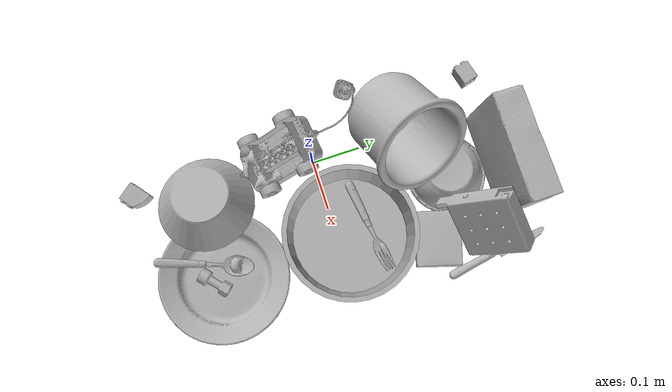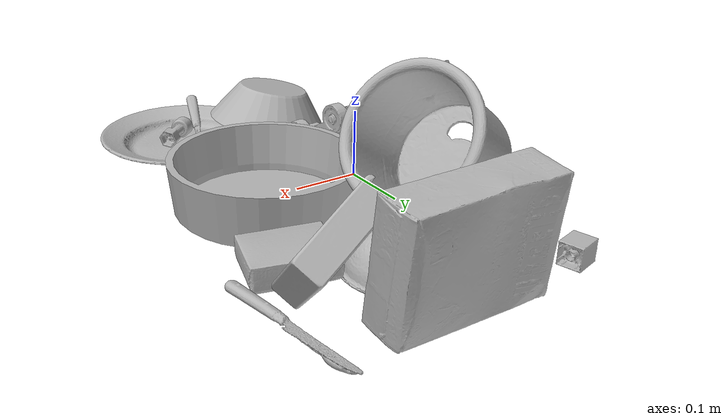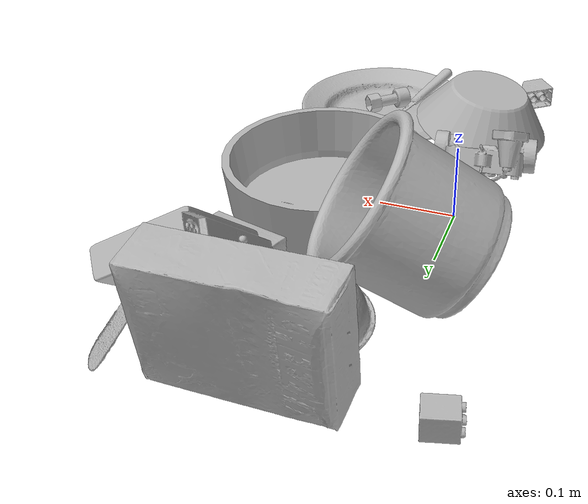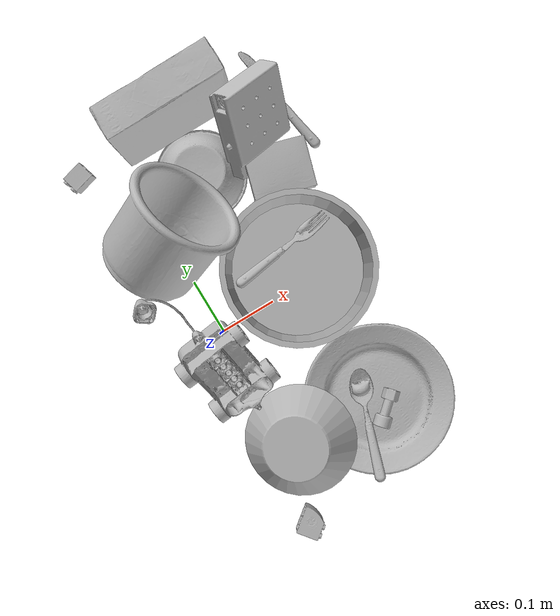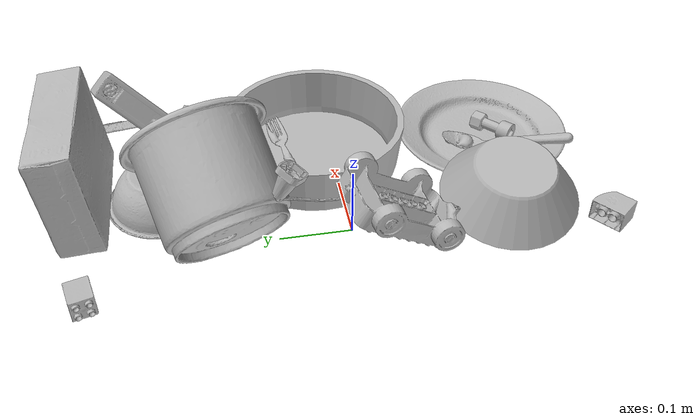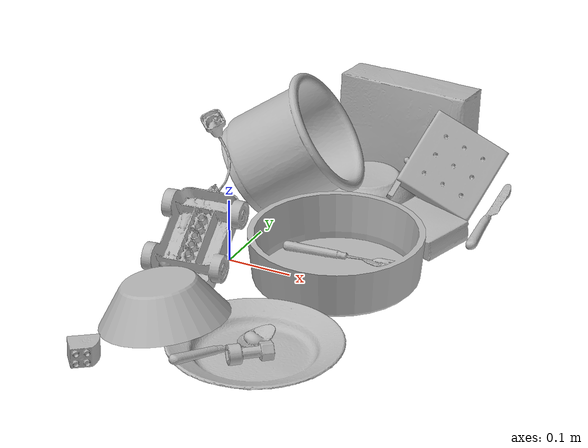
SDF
<sdf version="1.4">
  <world name="default">
    <light name="light1" type="point">
      <pose>0 0 1 0 0 0</pose>
      <diffuse>3 3 3 1</diffuse>
      <specular>3 3 3 1</specular>
    </light>
    <light name="light2" type="point">
      <pose>0 0.5 2 0 0 0</pose>
      <diffuse>1 1 1 1</diffuse>
      <specular>1 1 1 1</specular>
    </light>
    <light name="light3" type="point">
      <pose>0 0.5 2 0 0 0</pose>
      <diffuse>3 3 3 1</diffuse>
      <specular>3 3 3 1</specular>
    </light>
    <scene>
      <ambient>0.7 0.7 0.7</ambient>
    </scene>
    <model name="plate1">
      <link name="link_plate1">
        <collision name="default">
          <geometry>
            <mesh>
              <uri>model://plate/collision_meshes/collision.obj</uri>
              <scale>1.0 1.0 1.0</scale>
            </mesh>
          </geometry>
          <surface>
            <friction>
              <ode>
                <mu>0.5</mu>
                <mu2>0.5</mu2>
              </ode>
            </friction>
          <contact>
        <ode>
            <max_vel>0</max_vel>
            <min_depth>0.0001</min_depth>
            <kp>1e8</kp>
        </ode>
    </contact></surface>
        </collision>
        <visual name="default">
          <geometry>
            <mesh>
              <uri>model://plate/visual_meshes/visual.dae</uri>
              <scale>1.0 1.0 1.0</scale>
            </mesh>
          </geometry>
        </visual>
        <inertial>
          <mass>0.2518167495727539</mass>
          <pose>-0.000604460306931287 0.0002782583760563284 -0.001056198962032795 0.0022187362427659595 -0.003225514577586686 0.4526257716004426</pose>
          <inertia>
            <ixx>0.0011780038</ixx>
            <iyy>0.001166737</iyy>
            <izz>0.0023039998</izz>
            <ixy>0</ixy>
            <ixz>0</ixz>
            <iyz>0</iyz>
          </inertia>
        </inertial>
      </link>
      <pose>0.16916710138320923 -0.23856277763843536 0.013733038678765297 1.8202615425009327e-06 1.203909335968465e-06 -2.5627253043590903</pose>
    </model>
    <model name="plate2">
      <link name="link_plate2">
        <collision name="default">
          <geometry>
            <mesh>
              <uri>model://pan_tefal/collision_meshes/collision.obj</uri>
              <scale>1.0 1.0 1.0</scale>
            </mesh>
          </geometry>
          <surface>
            <friction>
              <ode>
                <mu>0.5</mu>
                <mu2>0.5</mu2>
              </ode>
            </friction>
          <contact>
        <ode>
            <max_vel>0</max_vel>
            <min_depth>0.0001</min_depth>
            <kp>1e8</kp>
        </ode>
    </contact></surface>
        </collision>
        <visual name="default">
          <geometry>
            <mesh>
              <uri>model://pan_tefal/visual_meshes/visual.dae</uri>
              <scale>1.0 1.0 1.0</scale>
            </mesh>
          </geometry>
        </visual>
        <inertial>
          <mass>1.062379002571106</mass>
          <pose>-0.00018001841090153903 3.2791107514640316e-05 -0.008514937944710255 0.0008190335190592257 -0.00033013878845789875 -0.3318630487039029</pose>
          <inertia>
            <ixx>0.0073335525</ixx>
            <iyy>0.007380832</iyy>
            <izz>0.013499655</izz>
            <ixy>0</ixy>
            <ixz>0</ixz>
            <iyz>0</iyz>
          </inertia>
        </inertial>
      </link>
      <pose>0.16593846678733826 0.024734513834118843 0.03802001103758812 0.00023647257592013975 0.0003055837478127161 0.787551136513481</pose>
    </model>
    <model name="bowl1">
      <link name="link_bowl1">
        <collision name="default">
          <geometry>
            <mesh>
              <uri>model://bowl/collision_meshes/collision.obj</uri>
              <scale>1.0 1.0 1.0</scale>
            </mesh>
          </geometry>
          <surface>
            <friction>
              <ode>
                <mu>0.5</mu>
                <mu2>0.5</mu2>
              </ode>
            </friction>
          <contact>
        <ode>
            <max_vel>0</max_vel>
            <min_depth>0.0001</min_depth>
            <kp>1e8</kp>
        </ode>
    </contact></surface>
        </collision>
        <visual name="default">
          <geometry>
            <mesh>
              <uri>model://bowl/visual_meshes/visual.dae</uri>
              <scale>1.0 1.0 1.0</scale>
            </mesh>
          </geometry>
        </visual>
        <inertial>
          <mass>0.06917417049407959</mass>
          <pose>0.00020445069822017103 -0.0010302119189873338 -0.0008042645640671253 -0.015764106225313407 0.014546789960746879 0.7140402093907182</pose>
          <inertia>
            <ixx>0.00015889853</ixx>
            <iyy>0.00015534814</iyy>
            <izz>0.000267322</izz>
            <ixy>0</ixy>
            <ixz>0</ixz>
            <iyz>0</iyz>
          </inertia>
        </inertial>
      </link>
      <pose>0.10789076238870621 0.25171661376953125 0.027242029085755348 -3.133313372914385 -0.00024215169332377287 0.011170668971503298</pose>
    </model>
    <model name="bowl2">
      <link name="link_bowl2">
        <collision name="default">
          <geometry>
            <mesh>
              <uri>model://bowl_a/collision_meshes/collision.obj</uri>
              <scale>1.0 1.0 1.0</scale>
            </mesh>
          </geometry>
          <surface>
            <friction>
              <ode>
                <mu>0.5</mu>
                <mu2>0.5</mu2>
              </ode>
            </friction>
          <contact>
        <ode>
            <max_vel>0</max_vel>
            <min_depth>0.0001</min_depth>
            <kp>1e8</kp>
        </ode>
    </contact></surface>
        </collision>
        <visual name="default">
          <geometry>
            <mesh>
              <uri>model://bowl_a/visual_meshes/visual.dae</uri>
              <scale>1.0 1.0 1.0</scale>
            </mesh>
          </geometry>
        </visual>
        <inertial>
          <mass>0.33581992983818054</mass>
          <pose>0.00027867587050423026 4.7312365495599806e-05 -0.0013765293406322598 -0.0009805275277335347 -0.0010938264345752996 -0.19124334191203107</pose>
          <inertia>
            <ixx>0.00095609494</ixx>
            <iyy>0.0009619646</iyy>
            <izz>0.0017004515</izz>
            <ixy>0</ixy>
            <ixz>0</ixz>
            <iyz>0</iyz>
          </inertia>
        </inertial>
      </link>
      <pose>0.010796037502586842 -0.22860640287399292 0.04700321704149246 2.9767364298529735 0.06749689319671165 1.8118601575032736</pose>
    </model>
    <model name="silverware1">
      <link name="link_silverware1">
        <collision name="default">
          <geometry>
            <mesh>
              <uri>model://spoon/collision_meshes/collision.obj</uri>
              <scale>1.0 1.0 1.0</scale>
            </mesh>
          </geometry>
          <surface>
            <friction>
              <ode>
                <mu>0.5</mu>
                <mu2>0.5</mu2>
              </ode>
            </friction>
          <contact>
        <ode>
            <max_vel>0</max_vel>
            <min_depth>0.0001</min_depth>
            <kp>1e8</kp>
        </ode>
    </contact></surface>
        </collision>
        <visual name="default">
          <geometry>
            <mesh>
              <uri>model://spoon/visual_meshes/visual.dae</uri>
              <scale>1.0 1.0 1.0</scale>
            </mesh>
          </geometry>
        </visual>
        <inertial>
          <mass>0.02635110728442669</mass>
          <pose>-0.005526317283511162 -0.0016034177970141172 -0.0007271651993505657 0.03521639754710896 -0.03906583271405073 0.0061506130160543454</pose>
          <inertia>
            <ixx>1.4656912e-06</ixx>
            <iyy>0.0001002651</iyy>
            <izz>0.00010098792</izz>
            <ixy>0</ixy>
            <ixz>0</ixz>
            <iyz>0</iyz>
          </inertia>
        </inertial>
      </link>
      <pose>0.1295698583126068 -0.26631492376327515 0.02141060307621956 0.034794858871319674 0.18417294160587735 1.2173918494713287</pose>
    </model>
    <model name="box1">
      <link name="link_box1">
        <collision name="default">
          <geometry>
            <mesh>
              <uri>model://cracker_box/collision_meshes/collision.obj</uri>
              <scale>1.0 1.0 1.0</scale>
            </mesh>
          </geometry>
          <surface>
            <friction>
              <ode>
                <mu>0.5</mu>
                <mu2>0.5</mu2>
              </ode>
            </friction>
          <contact>
        <ode>
            <max_vel>0</max_vel>
            <min_depth>0.0001</min_depth>
            <kp>1e8</kp>
        </ode>
    </contact></surface>
        </collision>
        <visual name="default">
          <geometry>
            <mesh>
              <uri>model://cracker_box/visual_meshes/visual.dae</uri>
              <scale>1.0 1.0 1.0</scale>
            </mesh>
          </geometry>
        </visual>
        <inertial>
          <mass>1.9942995309829712</mass>
          <pose>0.0009464178583584726 0.00025434247800149024 -0.0017029533628374338 -0.00031620747948387436 -0.011106490532043566 0.0025467943028284904</pose>
          <inertia>
            <ixx>0.005072607</ixx>
            <iyy>0.008375872</iyy>
            <izz>0.011953138</izz>
            <ixy>0</ixy>
            <ixz>0</ixz>
            <iyz>0</iyz>
          </inertia>
        </inertial>
      </link>
      <pose>0.11909358948469162 0.36797285079956055 0.08296725898981094 -1.6798887204719146 -0.0026480360999253873 -0.010603093686276521</pose>
    </model>
    <model name="box2">
      <link name="link_box2">
        <collision name="default">
          <geometry>
            <mesh>
              <uri>model://pudding_box/collision_meshes/collision.obj</uri>
              <scale>1.0 1.0 1.0</scale>
            </mesh>
          </geometry>
          <surface>
            <friction>
              <ode>
                <mu>0.5</mu>
                <mu2>0.5</mu2>
              </ode>
            </friction>
          <contact>
        <ode>
            <max_vel>0</max_vel>
            <min_depth>0.0001</min_depth>
            <kp>1e8</kp>
        </ode>
    </contact></surface>
        </collision>
        <visual name="default">
          <geometry>
            <mesh>
              <uri>model://pudding_box/visual_meshes/visual.dae</uri>
              <scale>1.0 1.0 1.0</scale>
            </mesh>
          </geometry>
        </visual>
        <inertial>
          <mass>0.5201411247253418</mass>
          <pose>0.0004894821904599667 0.0008067885646596551 -0.0005188828217796981 0.00521310178321913 -0.006603799649863257 0.020079825157321304</pose>
          <inertia>
            <ixx>0.0005879929</ixx>
            <iyy>0.00039560578</iyy>
            <izz>0.00086832506</izz>
            <ixy>0</ixy>
            <ixz>0</ixz>
            <iyz>0</iyz>
          </inertia>
        </inertial>
      </link>
      <pose>0.22887136042118073 0.1876721829175949 0.019725793972611427 0.022341778474264846 -0.011393012504179312 1.284750392627676</pose>
    </model>
    <model name="cup1">
      <link name="link_cup1">
        <collision name="default">
          <geometry>
            <mesh>
              <uri>model://i_cups/collision_meshes/collision.obj</uri>
              <scale>2.0 2.0 2.0</scale>
            </mesh>
          </geometry>
          <surface>
            <friction>
              <ode>
                <mu>0.5</mu>
                <mu2>0.5</mu2>
              </ode>
            </friction>
          <contact>
        <ode>
            <max_vel>0</max_vel>
            <min_depth>0.0001</min_depth>
            <kp>1e8</kp>
        </ode>
    </contact></surface>
        </collision>
        <visual name="default">
          <geometry>
            <mesh>
              <uri>model://i_cups/visual_meshes/visual.dae</uri>
              <scale>2.0 2.0 2.0</scale>
            </mesh>
          </geometry>
        </visual>
        <inertial>
          <mass>0.946932315826416</mass>
          <pose>0.00022480011102743447 0.0003359477559570223 -0.0017158038681373 -0.02898277199923076 -0.03987335280003036 -0.34591530516328983</pose>
          <inertia>
            <ixx>0.005244167</ixx>
            <iyy>0.0052903723</iyy>
            <izz>0.005861205</izz>
            <ixy>0</ixy>
            <ixz>0</ixz>
            <iyz>0</iyz>
          </inertia>
        </inertial>
      </link>
      <pose>0.007338274270296097 0.17969924211502075 0.10379605740308762 -0.29064159190451416 0.9650556469824076 -0.04793123870386968</pose>
    </model>
    <model name="silverware2">
      <link name="link_silverware2">
        <collision name="default">
          <geometry>
            <mesh>
              <uri>model://fork/collision_meshes/collision.obj</uri>
              <scale>1.0 1.0 1.0</scale>
            </mesh>
          </geometry>
          <surface>
            <friction>
              <ode>
                <mu>0.5</mu>
                <mu2>0.5</mu2>
              </ode>
            </friction>
          <contact>
        <ode>
            <max_vel>0</max_vel>
            <min_depth>0.0001</min_depth>
            <kp>1e8</kp>
        </ode>
    </contact></surface>
        </collision>
        <visual name="default">
          <geometry>
            <mesh>
              <uri>model://fork/visual_meshes/visual.dae</uri>
              <scale>1.0 1.0 1.0</scale>
            </mesh>
          </geometry>
        </visual>
        <inertial>
          <mass>0.03207480534911156</mass>
          <pose>-0.02957005240023136 0.00046588238910771906 0.0003218861820641905 -0.013551414501779666 -0.010977842682601763 0.014453906756127453</pose>
          <inertia>
            <ixx>1.1244033e-06</ixx>
            <iyy>8.373807e-05</iyy>
            <izz>8.424099e-05</izz>
            <ixy>0</ixy>
            <ixz>0</ixz>
            <iyz>0</iyz>
          </inertia>
        </inertial>
      </link>
      <pose>0.15956588089466095 0.06690213084220886 0.013388522900640965 -0.18987122745792015 0.023326717288649327 0.12356284860159844</pose>
    </model>
    <model name="silverware3">
      <link name="link_silverware3">
        <collision name="default">
          <geometry>
            <mesh>
              <uri>model://knife/collision_meshes/collision.obj</uri>
              <scale>1.0 1.0 1.0</scale>
            </mesh>
          </geometry>
          <surface>
            <friction>
              <ode>
                <mu>0.5</mu>
                <mu2>0.5</mu2>
              </ode>
            </friction>
          <contact>
        <ode>
            <max_vel>0</max_vel>
            <min_depth>0.0001</min_depth>
            <kp>1e8</kp>
        </ode>
    </contact></surface>
        </collision>
        <visual name="default">
          <geometry>
            <mesh>
              <uri>model://knife/visual_meshes/visual.dae</uri>
              <scale>1.0 1.0 1.0</scale>
            </mesh>
          </geometry>
        </visual>
        <inertial>
          <mass>0.02260335348546505</mass>
          <pose>-0.023785259574651718 0.0015275129117071629 5.062025593360886e-05 0.073049853839256 0.017248417767033373 -0.0074098225522862896</pose>
          <inertia>
            <ixx>6.41575e-07</ixx>
            <iyy>8.6838445e-05</iyy>
            <izz>8.704508e-05</izz>
            <ixy>0</ixy>
            <ixz>0</ixz>
            <iyz>0</iyz>
          </inertia>
        </inertial>
      </link>
      <pose>0.29387152194976807 0.2943878471851349 0.008136836811900139 -0.2817361074856391 -0.008871802748076144 1.7137297498401252</pose>
    </model>
    <model name="toy1">
      <link name="link_toy1">
        <collision name="default">
          <geometry>
            <mesh>
              <uri>model://nine_hole_peg_test/collision_meshes/collision.obj</uri>
              <scale>1.0 1.0 1.0</scale>
            </mesh>
          </geometry>
          <surface>
            <friction>
              <ode>
                <mu>0.5</mu>
                <mu2>0.5</mu2>
              </ode>
            </friction>
          <contact>
        <ode>
            <max_vel>0</max_vel>
            <min_depth>0.0001</min_depth>
            <kp>1e8</kp>
        </ode>
    </contact></surface>
        </collision>
        <visual name="default">
          <geometry>
            <mesh>
              <uri>model://nine_hole_peg_test/visual_meshes/visual.dae</uri>
              <scale>1.0 1.0 1.0</scale>
            </mesh>
          </geometry>
        </visual>
        <inertial>
          <mass>0.3368244469165802</mass>
          <pose>-0.0046173869632184505 -0.009647615253925323 2.6460689696250483e-05 -0.001466679946039042 0.000719417968587533 -0.6342416610336568</pose>
          <inertia>
            <ixx>0.00052668044</ixx>
            <iyy>0.000491756</iyy>
            <izz>0.00092289934</izz>
            <ixy>0</ixy>
            <ixz>0</ixz>
            <iyz>0</iyz>
          </inertia>
        </inertial>
      </link>
      <pose>0.22523684799671173 0.27425485849380493 0.07618023455142975 -0.8544972794678827 -0.4896189072172721 -2.9273406035019427</pose>
    </model>
    <model name="toy2">
      <link name="link_toy2">
        <collision name="default">
          <geometry>
            <mesh>
              <uri>model://c_toy_airplane/collision_meshes/collision.obj</uri>
              <scale>1.0 1.0 1.0</scale>
            </mesh>
          </geometry>
          <surface>
            <friction>
              <ode>
                <mu>0.5</mu>
                <mu2>0.5</mu2>
              </ode>
            </friction>
          <contact>
        <ode>
            <max_vel>0</max_vel>
            <min_depth>0.0001</min_depth>
            <kp>1e8</kp>
        </ode>
    </contact></surface>
        </collision>
        <visual name="default">
          <geometry>
            <mesh>
              <uri>model://c_toy_airplane/visual_meshes/visual.dae</uri>
              <scale>1.0 1.0 1.0</scale>
            </mesh>
          </geometry>
        </visual>
        <inertial>
          <mass>0.025849465280771255</mass>
          <pose>-0.000230242803809233 -4.4294804979472246e-07 -0.006080531980842352 -0.006193997552816779 -0.016797268968147806 0.7655666586292194</pose>
          <inertia>
            <ixx>1.1869546e-05</ixx>
            <iyy>1.1836047e-05</iyy>
            <izz>2.7867347e-06</izz>
            <ixy>0</ixy>
            <ixz>0</ixz>
            <iyz>0</iyz>
          </inertia>
        </inertial>
      </link>
      <pose>0.17173151671886444 -0.25904345512390137 0.018579890951514244 1.5832320106935123 -0.11904627178900097 2.304038755191171</pose>
    </model>
    <model name="toy3">
      <link name="link_toy3">
        <collision name="default">
          <geometry>
            <mesh>
              <uri>model://g_lego_duplo/collision_meshes/collision.obj</uri>
              <scale>1.0 1.0 1.0</scale>
            </mesh>
          </geometry>
          <surface>
            <friction>
              <ode>
                <mu>0.5</mu>
                <mu2>0.5</mu2>
              </ode>
            </friction>
          <contact>
        <ode>
            <max_vel>0</max_vel>
            <min_depth>0.0001</min_depth>
            <kp>1e8</kp>
        </ode>
    </contact></surface>
        </collision>
        <visual name="default">
          <geometry>
            <mesh>
              <uri>model://g_lego_duplo/visual_meshes/visual.dae</uri>
              <scale>1.0 1.0 1.0</scale>
            </mesh>
          </geometry>
        </visual>
        <inertial>
          <mass>0.44857048988342285</mass>
          <pose>-0.05004768818616867 0.0017554624937474728 0.0038806761149317026 0.010962989380518968 0.03810827633819491 -0.09653029550410545</pose>
          <inertia>
            <ixx>0.0006499838</ixx>
            <iyy>0.00196511</iyy>
            <izz>0.0024584262</izz>
            <ixy>0</ixy>
            <ixz>0</ixz>
            <iyz>0</iyz>
          </inertia>
        </inertial>
      </link>
      <pose>-0.035108234733343124 -0.008052371442317963 0.08928738534450531 -3.1415748141802737 -0.5287690361841962 1.6959484768602413</pose>
    </model>
    <model name="toy4">
      <link name="link_toy4">
        <collision name="default">
          <geometry>
            <mesh>
              <uri>model://b_lego_duplo/collision_meshes/collision.obj</uri>
              <scale>1.0 1.0 1.0</scale>
            </mesh>
          </geometry>
          <surface>
            <friction>
              <ode>
                <mu>0.5</mu>
                <mu2>0.5</mu2>
              </ode>
            </friction>
          <contact>
        <ode>
            <max_vel>0</max_vel>
            <min_depth>0.0001</min_depth>
            <kp>1e8</kp>
        </ode>
    </contact></surface>
        </collision>
        <visual name="default">
          <geometry>
            <mesh>
              <uri>model://b_lego_duplo/visual_meshes/visual.dae</uri>
              <scale>1.0 1.0 1.0</scale>
            </mesh>
          </geometry>
        </visual>
        <inertial>
          <mass>0.028142115101218224</mass>
          <pose>-0.00011053047637687996 -9.15253895072965e-06 0.0019294291269034147 -0.03749502345465157 -0.02635389323626884 0.4519044936865358</pose>
          <inertia>
            <ixx>5.759495e-06</ixx>
            <iyy>5.798213e-06</iyy>
            <izz>5.1315224e-06</izz>
            <ixy>0</ixy>
            <ixz>0</ixz>
            <iyz>0</iyz>
          </inertia>
        </inertial>
      </link>
      <pose>-0.07588817924261093 0.35462337732315063 0.016152316704392433 -3.121085745961545 1.5624528840450358 0.2728211920080919</pose>
    </model>
    <model name="toy5">
      <link name="link_toy5">
        <collision name="default">
          <geometry>
            <mesh>
              <uri>model://d_lego_duplo/collision_meshes/collision.obj</uri>
              <scale>1.0 1.0 1.0</scale>
            </mesh>
          </geometry>
          <surface>
            <friction>
              <ode>
                <mu>0.5</mu>
                <mu2>0.5</mu2>
              </ode>
            </friction>
          <contact>
        <ode>
            <max_vel>0</max_vel>
            <min_depth>0.0001</min_depth>
            <kp>1e8</kp>
        </ode>
    </contact></surface>
        </collision>
        <visual name="default">
          <geometry>
            <mesh>
              <uri>model://d_lego_duplo/visual_meshes/visual.dae</uri>
              <scale>1.0 1.0 1.0</scale>
            </mesh>
          </geometry>
        </visual>
        <inertial>
          <mass>0.03456217050552368</mass>
          <pose>0.00283056334592402 0.00016366186900995672 0.0008589798817411065 0.08010865489808279 -0.3835519084219494 0.001029683970252444</pose>
          <inertia>
            <ixx>6.6907255e-06</ixx>
            <iyy>9.495956e-06</iyy>
            <izz>9.1575175e-06</izz>
            <ixy>0</ixy>
            <ixz>0</ixz>
            <iyz>0</iyz>
          </inertia>
        </inertial>
      </link>
      <pose>-0.03968576714396477 -0.36134135723114014 0.01638088934123516 -1.5706398702587407 -0.007925612511195822 -2.485381566892685</pose>
    </model>
  <physics type="ode">
      <max_contacts>50</max_contacts>
      <ode>
        <solver>
          <type>quick</type>
          <iters>75</iters>
        </solver>
        <constraints>
          <contact_max_correcting_vel>0</contact_max_correcting_vel>
          <contact_surface_layer>0</contact_surface_layer>
        </constraints>
      </ode>
    </physics></world>
</sdf>
